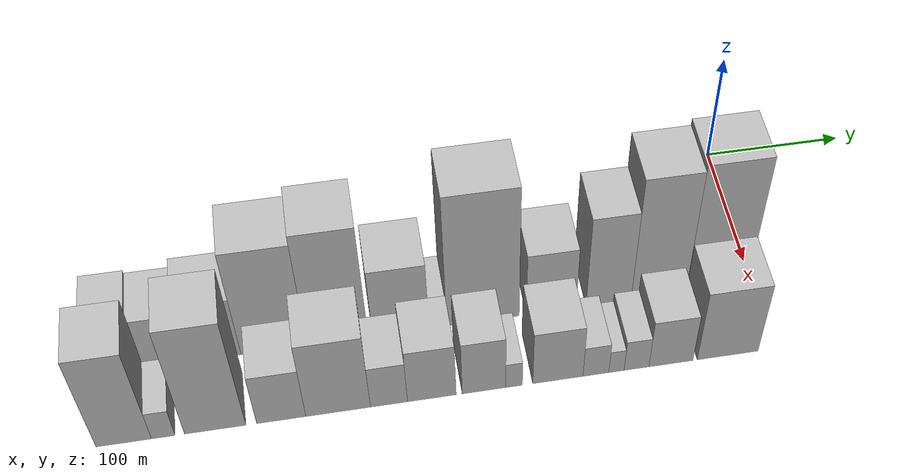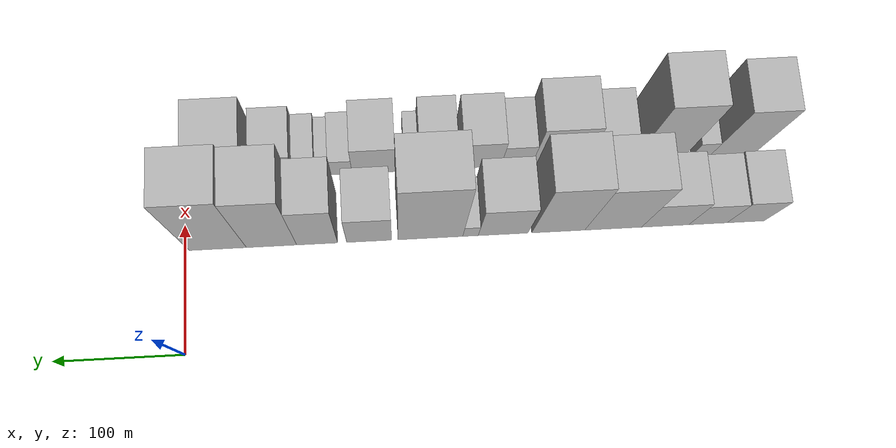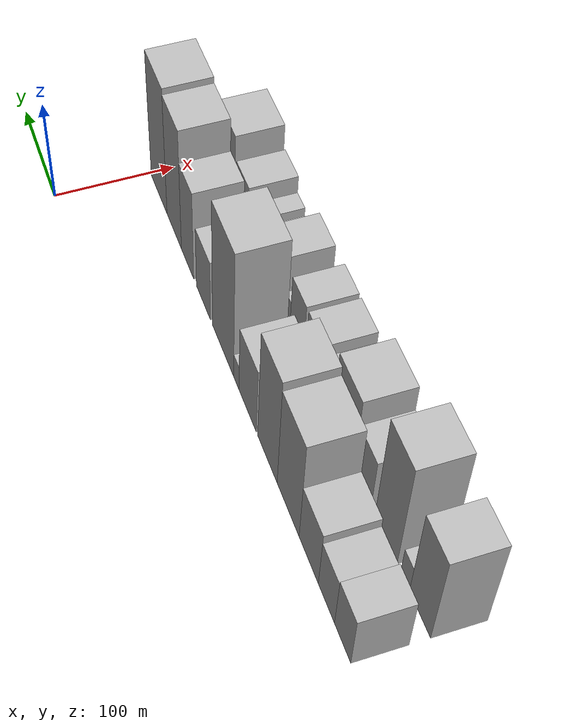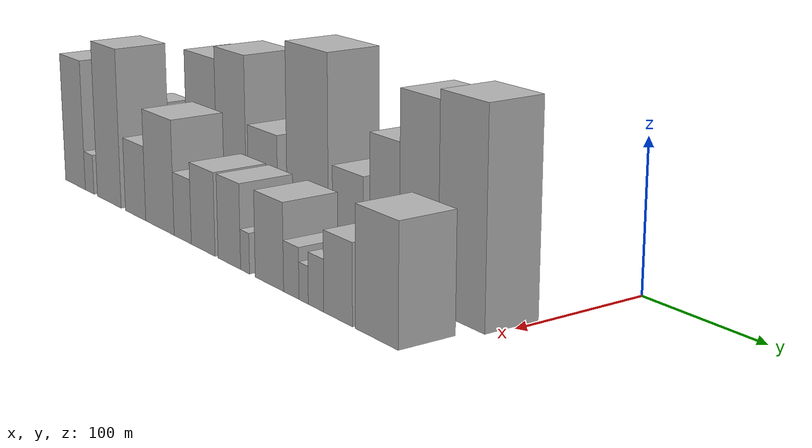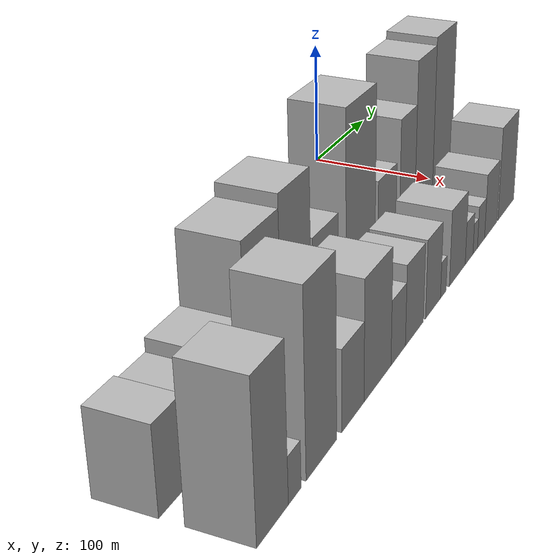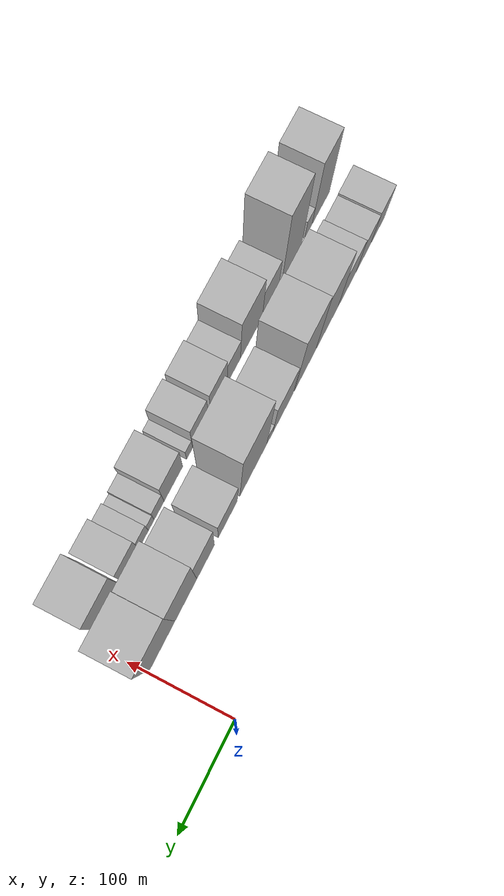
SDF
<sdf version="1.6">
 <world name="default">
  <model name="building_1">
   <static>1</static>
   <pose>100.0000 -435.4611 0 0.000000 0.000000 0.000000</pose>
   <link name="link">
    <pose>0 0 28.50 0 0 0</pose>
    <collision name="collision"><geometry><box><size>40.0000 29.0777 57.0000</size></box></geometry></collision>
    <visual name="visual">
     <cast_shadows>0</cast_shadows>
     <geometry><box><size>40.0000 29.0777 57.0000</size></box></geometry>
     <material>
      <script>
       <uri>model://HANNAS_wall/materials/scripts</uri>
       <uri>model://HANNAS_wall/materials/textures</uri>
       <name>vrc/HANNAS_wall</name>
      </script>
     </material>
    </visual>
   </link>
  </model>
  <model name="building_2">
   <static>1</static>
   <pose>100.0000 -405.9652 0 0.000000 0.000000 0.000000</pose>
   <link name="link">
    <pose>0 0 27.00 0 0 0</pose>
    <collision name="collision"><geometry><box><size>40.0000 29.9142 54.0000</size></box></geometry></collision>
    <visual name="visual">
     <cast_shadows>0</cast_shadows>
     <geometry><box><size>40.0000 29.9142 54.0000</size></box></geometry>
     <material>
      <script>
       <uri>model://HANNAS_wall/materials/scripts</uri>
       <uri>model://HANNAS_wall/materials/textures</uri>
       <name>vrc/HANNAS_wall</name>
      </script>
     </material>
    </visual>
   </link>
  </model>
  <model name="building_3">
   <static>1</static>
   <pose>100.0000 -372.5697 0 0.000000 0.000000 0.000000</pose>
   <link name="link">
    <pose>0 0 31.50 0 0 0</pose>
    <collision name="collision"><geometry><box><size>40.0000 36.8767 63.0000</size></box></geometry></collision>
    <visual name="visual">
     <cast_shadows>0</cast_shadows>
     <geometry><box><size>40.0000 36.8767 63.0000</size></box></geometry>
     <material>
      <script>
       <uri>model://HANNAS_wall/materials/scripts</uri>
       <uri>model://HANNAS_wall/materials/textures</uri>
       <name>vrc/HANNAS_wall</name>
      </script>
     </material>
    </visual>
   </link>
  </model>
  <model name="building_4">
   <static>1</static>
   <pose>100.0000 -331.9615 0 0.000000 0.000000 0.000000</pose>
   <link name="link">
    <pose>0 0 55.50 0 0 0</pose>
    <collision name="collision"><geometry><box><size>40.0000 44.3397 111.0000</size></box></geometry></collision>
    <visual name="visual">
     <cast_shadows>0</cast_shadows>
     <geometry><box><size>40.0000 44.3397 111.0000</size></box></geometry>
     <material>
      <script>
       <uri>model://HANNAS_wall/materials/scripts</uri>
       <uri>model://HANNAS_wall/materials/textures</uri>
       <name>vrc/HANNAS_wall</name>
      </script>
     </material>
    </visual>
   </link>
  </model>
  <model name="building_5">
   <static>1</static>
   <pose>100.0000 -289.1052 0 0.000000 0.000000 0.000000</pose>
   <link name="link">
    <pose>0 0 60.00 0 0 0</pose>
    <collision name="collision"><geometry><box><size>40.0000 41.3730 120.0000</size></box></geometry></collision>
    <visual name="visual">
     <cast_shadows>0</cast_shadows>
     <geometry><box><size>40.0000 41.3730 120.0000</size></box></geometry>
     <material>
      <script>
       <uri>model://HANNAS_wall/materials/scripts</uri>
       <uri>model://HANNAS_wall/materials/textures</uri>
       <name>vrc/HANNAS_wall</name>
      </script>
     </material>
    </visual>
   </link>
  </model>
  <model name="building_6">
   <static>1</static>
   <pose>100.0000 -246.0872 0 0.000000 0.000000 0.000000</pose>
   <link name="link">
    <pose>0 0 36.00 0 0 0</pose>
    <collision name="collision"><geometry><box><size>40.0000 38.6629 72.0000</size></box></geometry></collision>
    <visual name="visual">
     <cast_shadows>0</cast_shadows>
     <geometry><box><size>40.0000 38.6629 72.0000</size></box></geometry>
     <material>
      <script>
       <uri>model://HANNAS_wall/materials/scripts</uri>
       <uri>model://HANNAS_wall/materials/textures</uri>
       <name>vrc/HANNAS_wall</name>
      </script>
     </material>
    </visual>
   </link>
  </model>
  <model name="building_7">
   <static>1</static>
   <pose>100.0000 -220.7456 0 0.000000 0.000000 0.000000</pose>
   <link name="link">
    <pose>0 0 13.50 0 0 0</pose>
    <collision name="collision"><geometry><box><size>40.0000 12.0203 27.0000</size></box></geometry></collision>
    <visual name="visual">
     <cast_shadows>0</cast_shadows>
     <geometry><box><size>40.0000 12.0203 27.0000</size></box></geometry>
     <material>
      <script>
       <uri>model://HANNAS_wall/materials/scripts</uri>
       <uri>model://HANNAS_wall/materials/textures</uri>
       <name>vrc/HANNAS_wall</name>
      </script>
     </material>
    </visual>
   </link>
  </model>
  <model name="building_8">
   <static>1</static>
   <pose>100.0000 -189.6394 0 0.000000 0.000000 0.000000</pose>
   <link name="link">
    <pose>0 0 69.00 0 0 0</pose>
    <collision name="collision"><geometry><box><size>40.0000 50.1922 138.0000</size></box></geometry></collision>
    <visual name="visual">
     <cast_shadows>0</cast_shadows>
     <geometry><box><size>40.0000 50.1922 138.0000</size></box></geometry>
     <material>
      <script>
       <uri>model://HANNAS_wall/materials/scripts</uri>
       <uri>model://HANNAS_wall/materials/textures</uri>
       <name>vrc/HANNAS_wall</name>
      </script>
     </material>
    </visual>
   </link>
  </model>
  <model name="building_9">
   <static>1</static>
   <pose>100.0000 -142.1717 0 0.000000 0.000000 0.000000</pose>
   <link name="link">
    <pose>0 0 33.00 0 0 0</pose>
    <collision name="collision"><geometry><box><size>40.0000 34.7432 66.0000</size></box></geometry></collision>
    <visual name="visual">
     <cast_shadows>0</cast_shadows>
     <geometry><box><size>40.0000 34.7432 66.0000</size></box></geometry>
     <material>
      <script>
       <uri>model://HANNAS_wall/materials/scripts</uri>
       <uri>model://HANNAS_wall/materials/textures</uri>
       <name>vrc/HANNAS_wall</name>
      </script>
     </material>
    </visual>
   </link>
  </model>
  <model name="building_10">
   <static>1</static>
   <pose>100.0000 -101.9353 0 0.000000 0.000000 0.000000</pose>
   <link name="link">
    <pose>0 0 48.00 0 0 0</pose>
    <collision name="collision"><geometry><box><size>40.0000 31.7297 96.0000</size></box></geometry></collision>
    <visual name="visual">
     <cast_shadows>0</cast_shadows>
     <geometry><box><size>40.0000 31.7297 96.0000</size></box></geometry>
     <material>
      <script>
       <uri>model://HANNAS_wall/materials/scripts</uri>
       <uri>model://HANNAS_wall/materials/textures</uri>
       <name>vrc/HANNAS_wall</name>
      </script>
     </material>
    </visual>
   </link>
  </model>
  <model name="building_11">
   <static>1</static>
   <pose>100.0000 -66.6433 0 0.000000 0.000000 0.000000</pose>
   <link name="link">
    <pose>0 0 64.50 0 0 0</pose>
    <collision name="collision"><geometry><box><size>40.0000 38.8544 129.0000</size></box></geometry></collision>
    <visual name="visual">
     <cast_shadows>0</cast_shadows>
     <geometry><box><size>40.0000 38.8544 129.0000</size></box></geometry>
     <material>
      <script>
       <uri>model://HANNAS_wall/materials/scripts</uri>
       <uri>model://HANNAS_wall/materials/textures</uri>
       <name>vrc/HANNAS_wall</name>
      </script>
     </material>
    </visual>
   </link>
  </model>
  <model name="building_12">
   <static>1</static>
   <pose>100.0000 -25.1831 0 0.000000 0.000000 0.000000</pose>
   <link name="link">
    <pose>0 0 67.50 0 0 0</pose>
    <collision name="collision"><geometry><box><size>40.0000 44.0659 135.0000</size></box></geometry></collision>
    <visual name="visual">
     <cast_shadows>0</cast_shadows>
     <geometry><box><size>40.0000 44.0659 135.0000</size></box></geometry>
     <material>
      <script>
       <uri>model://HANNAS_wall/materials/scripts</uri>
       <uri>model://HANNAS_wall/materials/textures</uri>
       <name>vrc/HANNAS_wall</name>
      </script>
     </material>
    </visual>
   </link>
  </model>
  <model name="building_26">
   <static>1</static>
   <pose>155.0000 -432.3813 0 0.000000 0.000000 0.000000</pose>
   <link name="link">
    <pose>0 0 49.50 0 0 0</pose>
    <collision name="collision"><geometry><box><size>40.0000 35.2374 99.0000</size></box></geometry></collision>
    <visual name="visual">
     <cast_shadows>0</cast_shadows>
     <geometry><box><size>40.0000 35.2374 99.0000</size></box></geometry>
     <material>
      <script>
       <uri>model://HANNAS_wall/materials/scripts</uri>
       <uri>model://HANNAS_wall/materials/textures</uri>
       <name>vrc/HANNAS_wall</name>
      </script>
     </material>
    </visual>
   </link>
  </model>
  <model name="building_27">
   <static>1</static>
   <pose>155.0000 -407.2251 0 0.000000 0.000000 0.000000</pose>
   <link name="link">
    <pose>0 0 15.00 0 0 0</pose>
    <collision name="collision"><geometry><box><size>40.0000 15.0749 30.0000</size></box></geometry></collision>
    <visual name="visual">
     <cast_shadows>0</cast_shadows>
     <geometry><box><size>40.0000 15.0749 30.0000</size></box></geometry>
     <material>
      <script>
       <uri>model://HANNAS_wall/materials/scripts</uri>
       <uri>model://HANNAS_wall/materials/textures</uri>
       <name>vrc/HANNAS_wall</name>
      </script>
     </material>
    </visual>
   </link>
  </model>
  <model name="building_28">
   <static>1</static>
   <pose>155.0000 -373.9745 0 0.000000 0.000000 0.000000</pose>
   <link name="link">
    <pose>0 0 58.50 0 0 0</pose>
    <collision name="collision"><geometry><box><size>40.0000 39.4264 117.0000</size></box></geometry></collision>
    <visual name="visual">
     <cast_shadows>0</cast_shadows>
     <geometry><box><size>40.0000 39.4264 117.0000</size></box></geometry>
     <material>
      <script>
       <uri>model://HANNAS_wall/materials/scripts</uri>
       <uri>model://HANNAS_wall/materials/textures</uri>
       <name>vrc/HANNAS_wall</name>
      </script>
     </material>
    </visual>
   </link>
  </model>
  <model name="building_29">
   <static>1</static>
   <pose>155.0000 -331.3084 0 0.000000 0.000000 0.000000</pose>
   <link name="link">
    <pose>0 0 27.00 0 0 0</pose>
    <collision name="collision"><geometry><box><size>40.0000 31.9059 54.0000</size></box></geometry></collision>
    <visual name="visual">
     <cast_shadows>0</cast_shadows>
     <geometry><box><size>40.0000 31.9059 54.0000</size></box></geometry>
     <material>
      <script>
       <uri>model://HANNAS_wall/materials/scripts</uri>
       <uri>model://HANNAS_wall/materials/textures</uri>
       <name>vrc/HANNAS_wall</name>
      </script>
     </material>
    </visual>
   </link>
  </model>
  <model name="building_30">
   <static>1</static>
   <pose>155.0000 -294.2171 0 0.000000 0.000000 0.000000</pose>
   <link name="link">
    <pose>0 0 40.50 0 0 0</pose>
    <collision name="collision"><geometry><box><size>40.0000 42.2767 81.0000</size></box></geometry></collision>
    <visual name="visual">
     <cast_shadows>0</cast_shadows>
     <geometry><box><size>40.0000 42.2767 81.0000</size></box></geometry>
     <material>
      <script>
       <uri>model://HANNAS_wall/materials/scripts</uri>
       <uri>model://HANNAS_wall/materials/textures</uri>
       <name>vrc/HANNAS_wall</name>
      </script>
     </material>
    </visual>
   </link>
  </model>
  <model name="building_31">
   <static>1</static>
   <pose>155.0000 -260.8670 0 0.000000 0.000000 0.000000</pose>
   <link name="link">
    <pose>0 0 22.50 0 0 0</pose>
    <collision name="collision"><geometry><box><size>40.0000 24.4234 45.0000</size></box></geometry></collision>
    <visual name="visual">
     <cast_shadows>0</cast_shadows>
     <geometry><box><size>40.0000 24.4234 45.0000</size></box></geometry>
     <material>
      <script>
       <uri>model://HANNAS_wall/materials/scripts</uri>
       <uri>model://HANNAS_wall/materials/textures</uri>
       <name>vrc/HANNAS_wall</name>
      </script>
     </material>
    </visual>
   </link>
  </model>
  <model name="building_32">
   <static>1</static>
   <pose>155.0000 -232.5107 0 0.000000 0.000000 0.000000</pose>
   <link name="link">
    <pose>0 0 28.50 0 0 0</pose>
    <collision name="collision"><geometry><box><size>40.0000 32.2892 57.0000</size></box></geometry></collision>
    <visual name="visual">
     <cast_shadows>0</cast_shadows>
     <geometry><box><size>40.0000 32.2892 57.0000</size></box></geometry>
     <material>
      <script>
       <uri>model://HANNAS_wall/materials/scripts</uri>
       <uri>model://HANNAS_wall/materials/textures</uri>
       <name>vrc/HANNAS_wall</name>
      </script>
     </material>
    </visual>
   </link>
  </model>
  <model name="building_33">
   <static>1</static>
   <pose>155.0000 -197.8432 0 0.000000 0.000000 0.000000</pose>
   <link name="link">
    <pose>0 0 28.50 0 0 0</pose>
    <collision name="collision"><geometry><box><size>40.0000 29.0459 57.0000</size></box></geometry></collision>
    <visual name="visual">
     <cast_shadows>0</cast_shadows>
     <geometry><box><size>40.0000 29.0459 57.0000</size></box></geometry>
     <material>
      <script>
       <uri>model://HANNAS_wall/materials/scripts</uri>
       <uri>model://HANNAS_wall/materials/textures</uri>
       <name>vrc/HANNAS_wall</name>
      </script>
     </material>
    </visual>
   </link>
  </model>
  <model name="building_34">
   <static>1</static>
   <pose>155.0000 -177.7315 0 0.000000 0.000000 0.000000</pose>
   <link name="link">
    <pose>0 0 13.50 0 0 0</pose>
    <collision name="collision"><geometry><box><size>40.0000 11.1773 27.0000</size></box></geometry></collision>
    <visual name="visual">
     <cast_shadows>0</cast_shadows>
     <geometry><box><size>40.0000 11.1773 27.0000</size></box></geometry>
     <material>
      <script>
       <uri>model://HANNAS_wall/materials/scripts</uri>
       <uri>model://HANNAS_wall/materials/textures</uri>
       <name>vrc/HANNAS_wall</name>
      </script>
     </material>
    </visual>
   </link>
  </model>
  <model name="building_35">
   <static>1</static>
   <pose>155.0000 -148.1930 0 0.000000 0.000000 0.000000</pose>
   <link name="link">
    <pose>0 0 28.50 0 0 0</pose>
    <collision name="collision"><geometry><box><size>40.0000 33.8998 57.0000</size></box></geometry></collision>
    <visual name="visual">
     <cast_shadows>0</cast_shadows>
     <geometry><box><size>40.0000 33.8998 57.0000</size></box></geometry>
     <material>
      <script>
       <uri>model://HANNAS_wall/materials/scripts</uri>
       <uri>model://HANNAS_wall/materials/textures</uri>
       <name>vrc/HANNAS_wall</name>
      </script>
     </material>
    </visual>
   </link>
  </model>
  <model name="building_36">
   <static>1</static>
   <pose>155.0000 -122.4516 0 0.000000 0.000000 0.000000</pose>
   <link name="link">
    <pose>0 0 16.50 0 0 0</pose>
    <collision name="collision"><geometry><box><size>40.0000 17.5828 33.0000</size></box></geometry></collision>
    <visual name="visual">
     <cast_shadows>0</cast_shadows>
     <geometry><box><size>40.0000 17.5828 33.0000</size></box></geometry>
     <material>
      <script>
       <uri>model://HANNAS_wall/materials/scripts</uri>
       <uri>model://HANNAS_wall/materials/textures</uri>
       <name>vrc/HANNAS_wall</name>
      </script>
     </material>
    </visual>
   </link>
  </model>
  <model name="building_37">
   <static>1</static>
   <pose>155.0000 -108.4653 0 0.000000 0.000000 0.000000</pose>
   <link name="link">
    <pose>0 0 12.00 0 0 0</pose>
    <collision name="collision"><geometry><box><size>40.0000 10.3897 24.0000</size></box></geometry></collision>
    <visual name="visual">
     <cast_shadows>0</cast_shadows>
     <geometry><box><size>40.0000 10.3897 24.0000</size></box></geometry>
     <material>
      <script>
       <uri>model://HANNAS_wall/materials/scripts</uri>
       <uri>model://HANNAS_wall/materials/textures</uri>
       <name>vrc/HANNAS_wall</name>
      </script>
     </material>
    </visual>
   </link>
  </model>
  <model name="building_38">
   <static>1</static>
   <pose>155.0000 -94.8098 0 0.000000 0.000000 0.000000</pose>
   <link name="link">
    <pose>0 0 16.50 0 0 0</pose>
    <collision name="collision"><geometry><box><size>40.0000 16.9212 33.0000</size></box></geometry></collision>
    <visual name="visual">
     <cast_shadows>0</cast_shadows>
     <geometry><box><size>40.0000 16.9212 33.0000</size></box></geometry>
     <material>
      <script>
       <uri>model://HANNAS_wall/materials/scripts</uri>
       <uri>model://HANNAS_wall/materials/textures</uri>
       <name>vrc/HANNAS_wall</name>
      </script>
     </material>
    </visual>
   </link>
  </model>
  <model name="building_39">
   <static>1</static>
   <pose>155.0000 -71.2426 0 0.000000 0.000000 0.000000</pose>
   <link name="link">
    <pose>0 0 25.50 0 0 0</pose>
    <collision name="collision"><geometry><box><size>40.0000 30.2132 51.0000</size></box></geometry></collision>
    <visual name="visual">
     <cast_shadows>0</cast_shadows>
     <geometry><box><size>40.0000 30.2132 51.0000</size></box></geometry>
     <material>
      <script>
       <uri>model://HANNAS_wall/materials/scripts</uri>
       <uri>model://HANNAS_wall/materials/textures</uri>
       <name>vrc/HANNAS_wall</name>
      </script>
     </material>
    </visual>
   </link>
  </model>
  <model name="building_40">
   <static>1</static>
   <pose>155.0000 -32.1144 0 0.000000 0.000000 0.000000</pose>
   <link name="link">
    <pose>0 0 37.50 0 0 0</pose>
    <collision name="collision"><geometry><box><size>40.0000 42.0434 75.0000</size></box></geometry></collision>
    <visual name="visual">
     <cast_shadows>0</cast_shadows>
     <geometry><box><size>40.0000 42.0434 75.0000</size></box></geometry>
     <material>
      <script>
       <uri>model://HANNAS_wall/materials/scripts</uri>
       <uri>model://HANNAS_wall/materials/textures</uri>
       <name>vrc/HANNAS_wall</name>
      </script>
     </material>
    </visual>
   </link>
  </model>
 </world>
</sdf>
